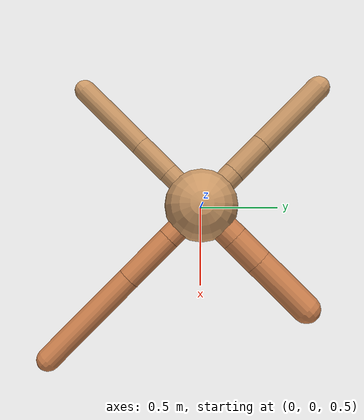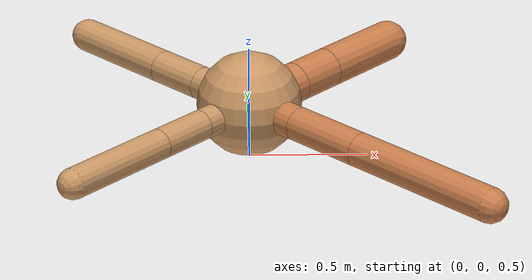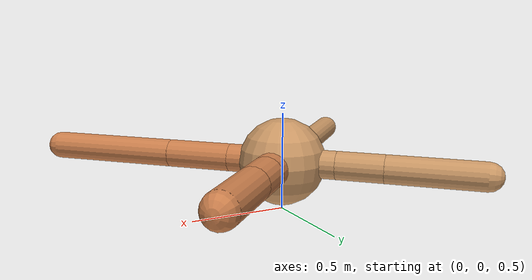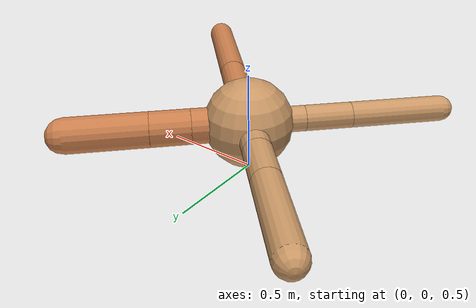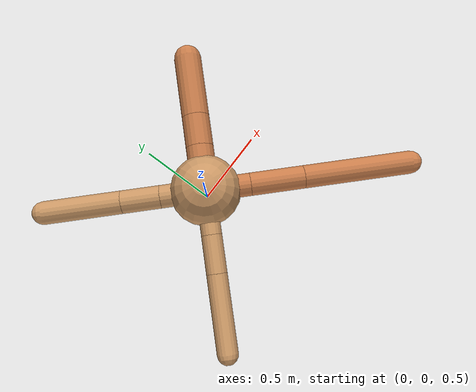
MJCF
<?xml version="1.0" ?>
<mujoco model="ant">

	<compiler angle="degree" coordinate="local" inertiafromgeom="true"/>

	<option integrator="RK4" timestep="0.01"/>

	<custom>

		<numeric data="0.0 0.0 0.55 1.0 0.0 0.0 0.0 0.0 1.0 0.0 -1.0 0.0 -1.0 0.0 1.0" name="init_qpos"/>

	</custom>

	<default>

		<joint armature="1" damping="1" limited="true"/>

		<geom conaffinity="0" condim="3" density="5.0" friction="1.5 0.1 0.1" margin="0.01" rgba="0.8 0.6 0.4 1"/>

	</default>

	<worldbody>

		<body name="torso" pos="0 0 0.75">

			<geom name="torso_geom" pos="0 0 0" size="0.22336043623778623" type="sphere"/>

			<!--joint armature="0" damping="0" limited="false" margin="0.01" name="root" pos="0 0 0" type="free"/-->

			<body name="front_left_leg" pos="0 0 0">

				<geom fromto="0 0 0 0.2 0.2 0" name="aux_1_geom" size="0.0884434665171316" type="capsule" rgba=".8 .5 .3 1"/>

				<body name="aux_1" pos="0.2 0.2 0">

					<joint axis="0 0 1" name="hip_1" pos="0.0 0.0 0.0" range="-40 40" type="hinge"/>

					<geom fromto="0 0 0 0.14200930919756805 0.14200930919756805 0" name="left_leg_geom" size="0.0884434665171316" type="capsule" rgba=".8 .5 .3 1"/>

					<body pos="0.14200930919756805 0.14200930919756805 0" name="front_left_foot">

						<joint axis="-1 1 0" name="ankle_1" pos="0.0 0.0 0.0" range="30 100" type="hinge"/>

						<geom fromto="0 0 0 0.2840186183951361 0.2840186183951361 0" name="left_ankle_geom" size="0.0884434665171316" type="capsule" rgba=".8 .5 .3 1"/>

					</body>

				</body>

			</body>

			<body name="front_right_leg" pos="0 0 0">

				<geom fromto="0 0 0 -0.2 0.2 0" name="aux_2_geom" size="0.0727072446044688" type="capsule"/>

				<body name="aux_2" pos="-0.2 0.2 0">

					<joint axis="0 0 1" name="hip_2" pos="0.0 0.0 0.0" range="-40 40" type="hinge"/>

					<geom fromto="0 0 0 -0.17139439415017638 0.17139439415017638 0" name="right_leg_geom" size="0.0727072446044688" type="capsule"/>

					<body pos="-0.17139439415017638 0.17139439415017638 0" name="front_right_foot">

						<joint axis="1 1 0" name="ankle_2" pos="0.0 0.0 0.0" range="-100 -30" type="hinge"/>

						<geom fromto="0 0 0 -0.34278878830035275 0.34278878830035275 0" name="right_ankle_geom" size="0.0727072446044688" type="capsule"/>

					</body>

				</body>

			</body>

			<body name="left_back_leg" pos="0 0 0">

				<geom fromto="0 0 0 -0.2 -0.2 0" name="aux_3_geom" size="0.06511582564071532" type="capsule"/>

				<body name="aux_3" pos="-0.2 -0.2 0">

					<joint axis="0 0 1" name="hip_3" pos="0.0 0.0 0.0" range="-40 40" type="hinge"/>

					<geom fromto="0 0 0 -0.16759919925301214 -0.16759919925301214 0" name="back_leg_geom" size="0.06511582564071532" type="capsule"/>

					<body pos="-0.16759919925301214 -0.16759919925301214 0" name="left_back_foot">

						<joint axis="-1 1 0" name="ankle_3" pos="0.0 0.0 0.0" range="-100 -30" type="hinge"/>

						<geom fromto="0 0 0 -0.3351983985060243 -0.3351983985060243 0" name="third_ankle_geom" size="0.06511582564071532" type="capsule"/>

					</body>

				</body>

			</body>

			<body name="right_back_leg" pos="0 0 0">

				<geom fromto="0 0 0 0.2 -0.2 0" name="aux_4_geom" size="0.07256230445410425" type="capsule" rgba=".8 .5 .3 1"/>

				<body name="aux_4" pos="0.2 -0.2 0">

					<joint axis="0 0 1" name="hip_4" pos="0.0 0.0 0.0" range="-40 40" type="hinge"/>

					<geom fromto="0 0 0 0.23951041369888354 -0.23951041369888354 0" name="rightback_leg_geom" size="0.07256230445410425" type="capsule" rgba=".8 .5 .3 1"/>

					<body pos="0.23951041369888354 -0.23951041369888354 0" name="right_back_foot">

						<joint axis="1 1 0" name="ankle_4" pos="0.0 0.0 0.0" range="30 100" type="hinge"/>

						<geom fromto="0 0 0 0.4790208273977671 -0.4790208273977671 0" name="fourth_ankle_geom" size="0.07256230445410425" type="capsule" rgba=".8 .5 .3 1"/>

					</body>

				</body>

			</body>

		</body>

	</worldbody>

	<actuator>

		<motor ctrllimited="true" ctrlrange="-1.0 1.0" joint="hip_4" gear="150"/>

		<motor ctrllimited="true" ctrlrange="-1.0 1.0" joint="ankle_4" gear="150"/>

		<motor ctrllimited="true" ctrlrange="-1.0 1.0" joint="hip_1" gear="150"/>

		<motor ctrllimited="true" ctrlrange="-1.0 1.0" joint="ankle_1" gear="150"/>

		<motor ctrllimited="true" ctrlrange="-1.0 1.0" joint="hip_2" gear="150"/>

		<motor ctrllimited="true" ctrlrange="-1.0 1.0" joint="ankle_2" gear="150"/>

		<motor ctrllimited="true" ctrlrange="-1.0 1.0" joint="hip_3" gear="150"/>

		<motor ctrllimited="true" ctrlrange="-1.0 1.0" joint="ankle_3" gear="150"/>

	</actuator>

</mujoco>
